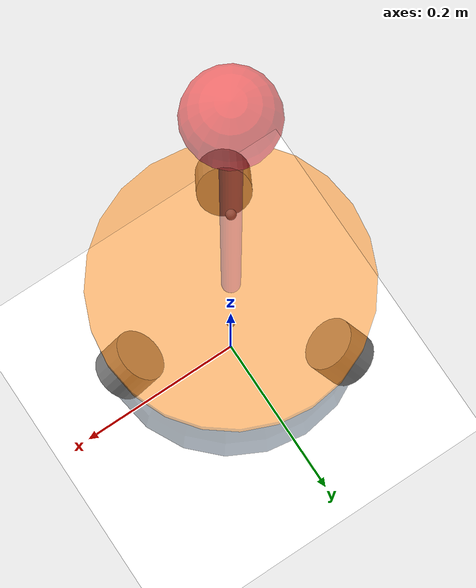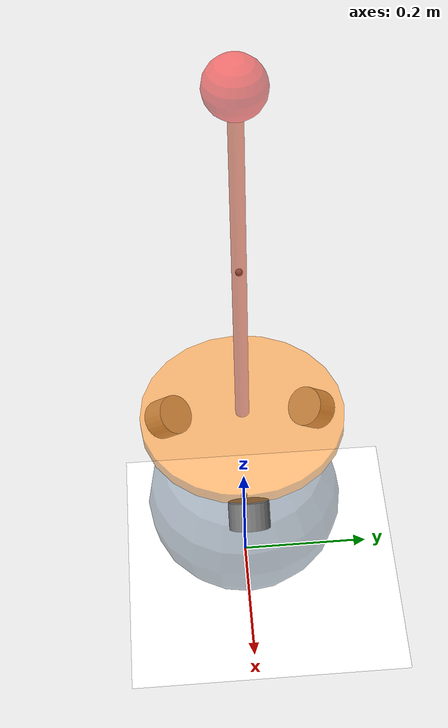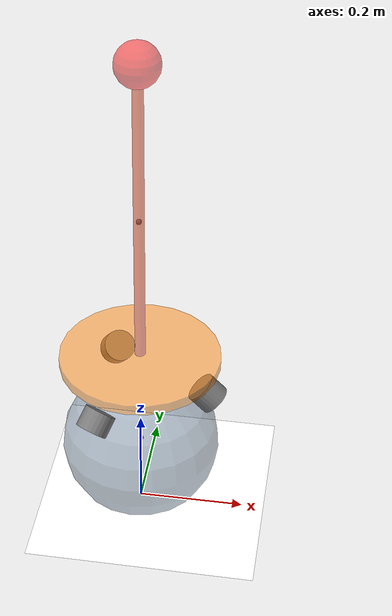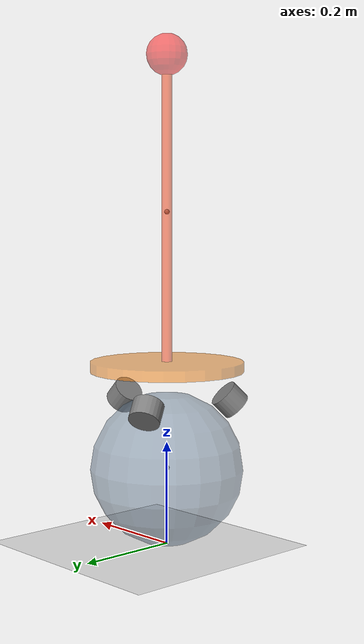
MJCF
<mujoco model="robot_with_wheelbase">
    <compiler coordinate="local" angle="degree"/>
    <option timestep="0.001" integrator="RK4" gravity="0 0 -9.81" impratio="10"/>
    <default>
        <geom rgba="1 1 1 1" />
        <joint damping="0.2"/>
    </default>
    <visual>
        <global offwidth="1920" offheight="1080"/>
    </visual>
    <asset>
        <texture name="checker" type="2d" builtin="checker" rgb1="0 0 0" rgb2="1 1 1" width="100" height="100" mark="none"/>
        <material name="checker_mat" texture="checker" specular="0.5" shininess="0.6" texrepeat="10 10"/>
        <material name="robot_mat" rgba="0.5 0.5 0.5 1"/>
    </asset>
    <worldbody>
        <geom name="floor" type="plane" material="checker_mat" size="10 10 0.1"/>
        <body name="sphere" pos="0 0 0.15">
            <freejoint name="sphere_free"/>
            <site name="sphere_imu_site" pos="0 0 0" />
            <geom name="sphere_geom" type="sphere" size="0.15" mass="15" rgba="0.4 0.5 0.6 0.5" />
        </body>
        <body name="robot" pos="0 0 0.35">
            <freejoint name="robot_free"/>
            <!-- Robot Chassis -->
            <geom name="chassis_geom" type="cylinder" size="0.15 0.01" material="robot_mat" mass="5.0" rgba="1 0.5 0 0.5"/>
            <!-- Vertical pendulum -->
            <body name="pendulum" pos="0 0 0.3">
                <site name="pendulum_imu_site" pos="0 0 0" />
                <geom name="rod_geom" type="cylinder" size="0.01 0.3" rgba="1 0.2 0 0.5" mass="0.2"/>
                <!-- Ball Tip -->
                <body name="rod_tip" pos="0 0 0.3">
                    <geom name="rod_tip_geom" type="sphere" size="0.04" rgba="1 0.0 0 0.5" mass="0.05"/>
                </body>
            </body>
            <!-- Wheel 1: Positioned at 0 degrees, tilted -45 degrees toward ball center -->
            <body name="wheel1" pos="0.12727922061357855 0 -0.07" euler="0 -45 0">
                <joint name="wheel1_joint" type="hinge" axis="0 0 1" damping="0.1"/>
                <geom name="wheel1_geom" type="cylinder" size="0.03 0.02" rgba="0.5 0.5 0.5 1" mass="0.5" />
            </body>
            <body name="wheel2" pos="-0.06363961030678925 0.110227038425243 -0.07" euler="40.89339465 20.70481105 -112.2076543">
                <joint name="wheel2_joint" type="hinge" axis="0 0 1" damping="0.1"/>
                <geom name="wheel2_geom" type="cylinder" size="0.03 0.02" rgba="0.5 0.5 0.5 1" mass="0.5" />
            </body>
            <body name="wheel3" pos="-0.06363961030678925 -0.11022703842524297 -0.07" euler="-40.89339465 20.70481105 112.2076543">
                <joint name="wheel3_joint" type="hinge" axis="0 0 1" damping="0.1"/>
                <geom name="wheel3_geom" type="cylinder" size="0.03 0.02" rgba="0.5 0.5 0.5 1" mass="0.5" />
            </body>
        </body>
        <light name="diffuse_light" pos="0 0 5" dir="0 0 -1" directional="false" diffuse="0.8 0.8 0.8" specular="0 0 0" castshadow="false" />
    </worldbody>
    <sensor>
        <framequat name="pendulum_angle" objtype="body" objname="pendulum"/>
        <gyro name="pendulum_gyro" site="pendulum_imu_site"/>
        <accelerometer name="pendulum_accel" site="pendulum_imu_site"/>
        <framelinvel name="sphere_linear_velocity" objtype="body" objname="sphere"/>
        <gyro name="sphere_gyro" site="sphere_imu_site"/>
        <accelerometer name="sphere_accel" site="pendulum_imu_site"/>
        <jointvel joint="wheel1_joint" name="wheel1_velocity"/>
        <jointvel joint="wheel2_joint" name="wheel2_velocity"/>
        <jointvel joint="wheel3_joint" name="wheel3_velocity"/>
    </sensor>
    <actuator>
        <motor name="motor1" joint="wheel1_joint" ctrlrange="-1 1"/>
        <motor name="motor2" joint="wheel2_joint" ctrlrange="-1 1"/>
        <motor name="motor3" joint="wheel3_joint" ctrlrange="-1 1"/>
    </actuator>
    <contact>
        <!-- Anisotropic friction: zero along wheel z-axis, non-zero for theta -->
        <pair geom2="wheel1_geom" geom1="sphere_geom" friction="0 1 0.005 0.0000 0.0000" condim="6" />
        <pair geom2="wheel2_geom" geom1="sphere_geom" friction="0 1 0.005 0.0000 0.0000" condim="6" />
        <pair geom2="wheel3_geom" geom1="sphere_geom" friction="0 1 0.005 0.0000 0.0000" condim="6" />
    </contact>
</mujoco>
